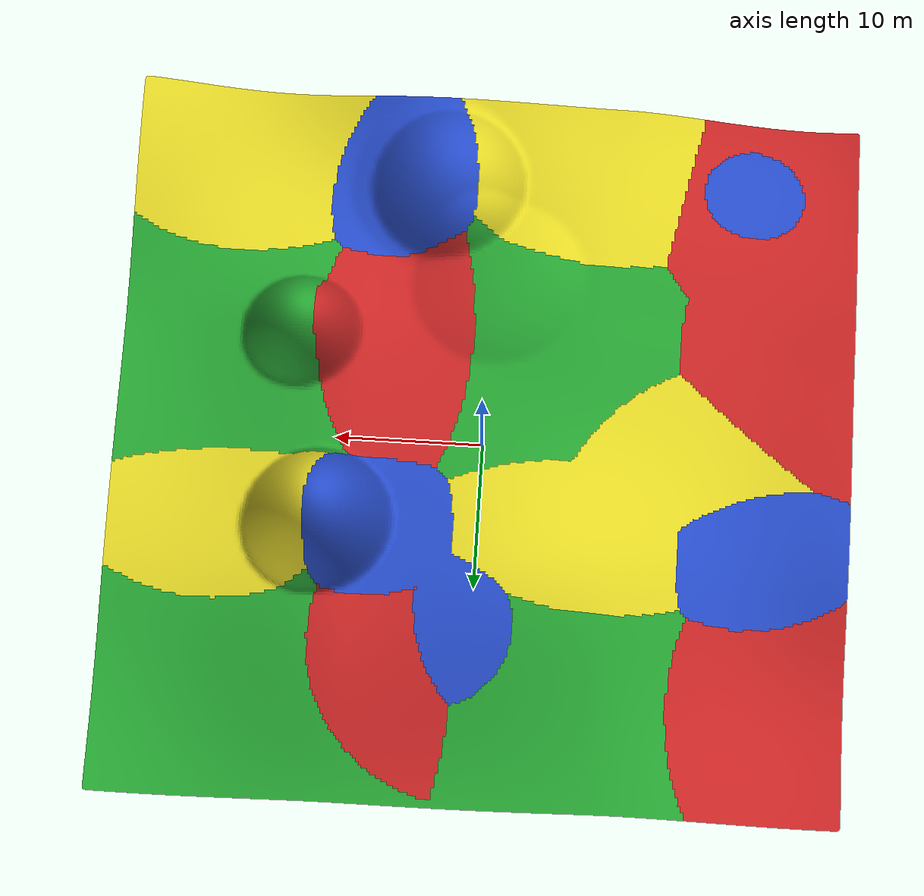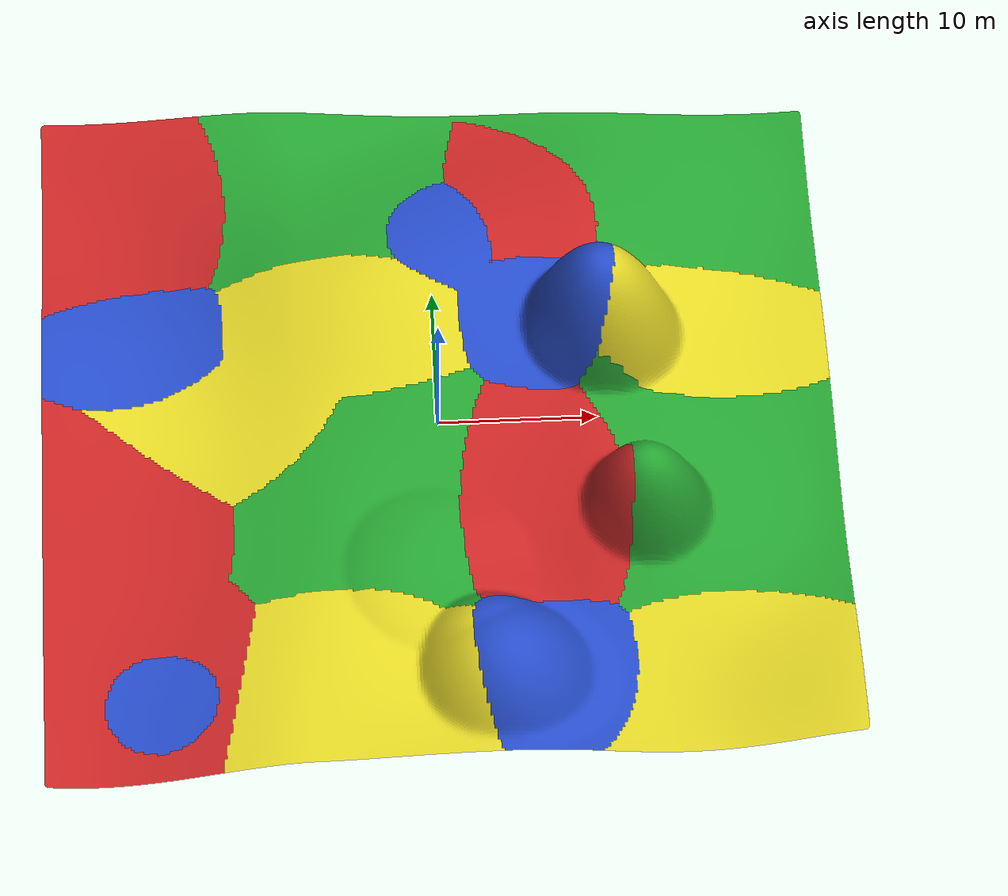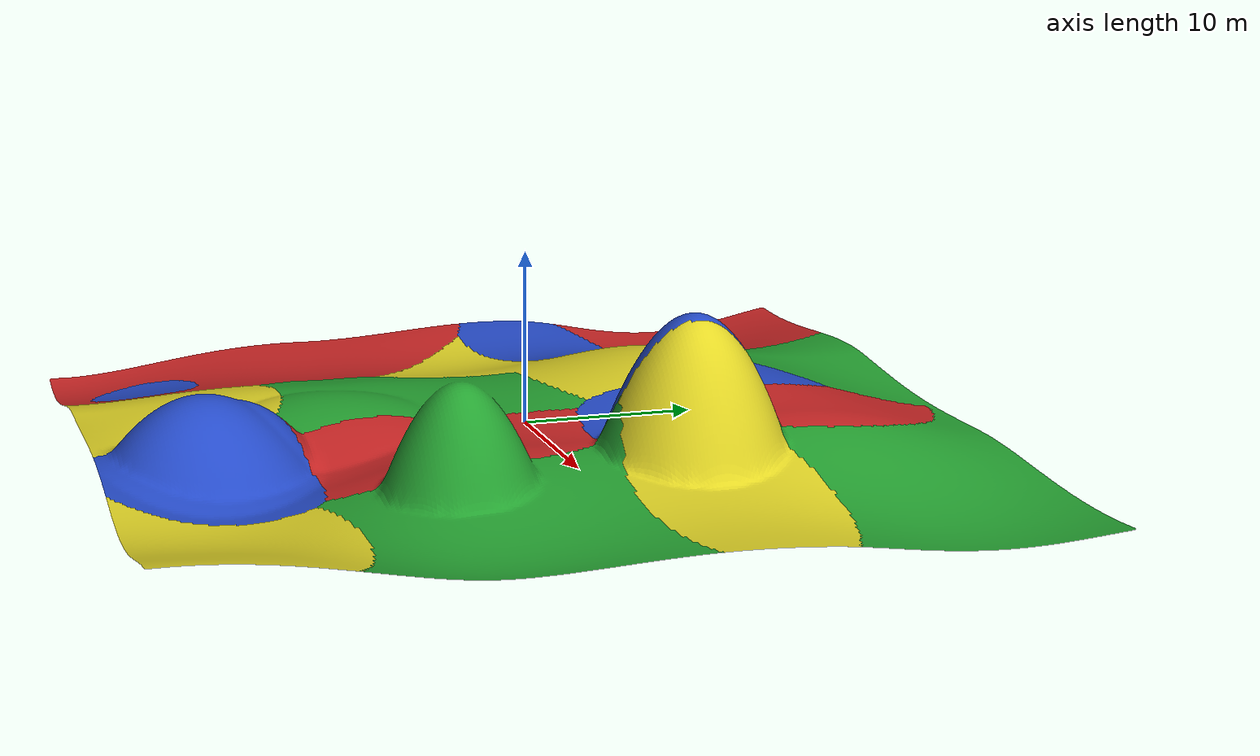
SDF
<?xml version="1.0" ?>
<sdf version="1.5">
  <world name="vibrant_terrain">
    <physics type="ode">
      <max_step_size>0.001</max_step_size>
      <real_time_factor>1.0</real_time_factor>
      <real_time_update_rate>1000</real_time_update_rate>
      <ode>
        <solver>
          <type>quick</type>
          <iters>50</iters>
          <thread_position_correction>true</thread_position_correction>
          <island_threads>8</island_threads>  <!-- Set to number of CPU cores available -->
          <use_dynamic_moi_rescaling>true</use_dynamic_moi_rescaling>
        </solver>
        <constraints>
          <cfm>0.0</cfm>
          <erp>0.2</erp>
          <contact_max_correcting_vel>100.0</contact_max_correcting_vel>
          <contact_surface_layer>0.001</contact_surface_layer>
        </constraints>
      </ode>
    </physics>
    <gravity>0 0 -9.8</gravity>
    <magnetic_field>6e-06 2.3e-05 -4.2e-05</magnetic_field>
    <atmosphere type="adiabatic"/>

    <light type="directional" name="sun">
      <cast_shadows>true</cast_shadows>
      <pose>0 0 10 0 0 0</pose>
      <diffuse>0.8 0.8 0.8 1</diffuse>
      <specular>0.2 0.2 0.2 1</specular>
      <direction>-0.5 0.1 -0.9</direction>
    </light>

    <!-- Ambient light -->
    <scene>
      <ambient>0.4 0.4 0.4 1</ambient>
      <background>0.7 0.7 0.7 1</background>
      <shadows>true</shadows>
    </scene>

    <!-- Sky appearance -->
    <sky>
      <clouds>
        <speed>12</speed>
      </clouds>
    </sky>

    <!-- terrain_red -->
    <model name="terrain_red">
      <static>true</static>
      <pose>0 0 0 0 0 0</pose>
      <link name="terrain_red_link">
        <collision name="collision">
          <geometry>
            <mesh>
              <uri>model://vibrant_terrain_export/terrain_red.dae</uri>
            </mesh>
          </geometry>
          <surface>
            <friction>
              <ode>
                <mu>120.0</mu>
                <mu2>100.0</mu2>
                <fdir1>1 0 0</fdir1>
                <slip1>0.01</slip1>
                <slip2>0.01</slip2>
              </ode>
            </friction>
          </surface>
        </collision>
        <visual name="visual">
          <geometry>
            <mesh>
              <uri>model://vibrant_terrain_export/terrain_red.dae</uri>
            </mesh>
          </geometry>
          <material>
            <script>
              <uri>file://media/materials/scripts/gazebo.material</uri>
              <name>Gazebo/Red</name>
            </script>
          </material>
        </visual>
      </link>
    </model>

    <!-- terrain_blue -->
    <model name="terrain_blue">
      <static>true</static>
      <pose>0 0 0 0 0 0</pose>
      <link name="terrain_blue_link">
        <collision name="collision">
          <geometry>
            <mesh>
              <uri>model://vibrant_terrain_export/terrain_blue.dae</uri>
            </mesh>
          </geometry>
          <surface>
            <friction>
              <ode>
                <mu>10.0</mu>
                <mu2>10.0</mu2>
                <fdir1>1 0 0</fdir1>
                <slip1>0.9</slip1>
                <slip2>0.9</slip2>
              </ode>
            </friction>
          </surface>
        </collision>
        <visual name="visual">
          <geometry>
            <mesh>
              <uri>model://vibrant_terrain_export/terrain_blue.dae</uri>
            </mesh>
          </geometry>
          <material>
            <script>
              <uri>file://media/materials/scripts/gazebo.material</uri>
              <name>Gazebo/Blue</name>
            </script>
          </material>
        </visual>
      </link>
    </model>

    <!-- terrain_yellow -->
    <model name="terrain_yellow">
      <static>true</static>
      <pose>0 0 0 0 0 0</pose>
      <link name="terrain_yellow_link">
        <collision name="collision">
          <geometry>
            <mesh>
              <uri>model://vibrant_terrain_export/terrain_yellow.dae</uri>
            </mesh>
          </geometry>
          <surface>
            <friction>
              <ode>
                <mu>50.0</mu>
                <mu2>40.0</mu2>
                <fdir1>1 0 0</fdir1>
                <slip1>0.3</slip1>
                <slip2>0.3</slip2>
              </ode>
            </friction>
          </surface>
        </collision>
        <visual name="visual">
          <geometry>
            <mesh>
              <uri>model://vibrant_terrain_export/terrain_yellow.dae</uri>
            </mesh>
          </geometry>
          <material>
            <script>
              <uri>file://media/materials/scripts/gazebo.material</uri>
              <name>Gazebo/Yellow</name>
            </script>
          </material>
        </visual>
      </link>
    </model>

    <!-- terrain_green -->
    <model name="terrain_green">
      <static>true</static>
      <pose>0 0 0 0 0 0</pose>
      <link name="terrain_green_link">
        <collision name="collision">
          <geometry>
            <mesh>
              <uri>model://vibrant_terrain_export/terrain_green.dae</uri>
            </mesh>
          </geometry>
          <surface>
            <friction>
              <ode>
                <mu>80.0</mu>
                <mu2>70.0</mu2>
                <fdir1>1 0 0</fdir1>
                <slip1>0.05</slip1>
                <slip2>0.05</slip2>
              </ode>
            </friction>
          </surface>
        </collision>
        <visual name="visual">
          <geometry>
            <mesh>
              <uri>model://vibrant_terrain_export/terrain_green.dae</uri>
            </mesh>
          </geometry>
          <material>
            <script>
              <uri>file://media/materials/scripts/gazebo.material</uri>
              <name>Gazebo/Green</name>
            </script>
          </material>
        </visual>
      </link>
    </model>

    <spherical_coordinates>
      <surface_model>EARTH_WGS84</surface_model>
      <world_frame_orientation>ENU</world_frame_orientation>
      <latitude_deg>47.397971057728974</latitude_deg>
      <longitude_deg> 8.546163739800146</longitude_deg>
      <elevation>0</elevation>
    </spherical_coordinates>
  </world>
</sdf>
